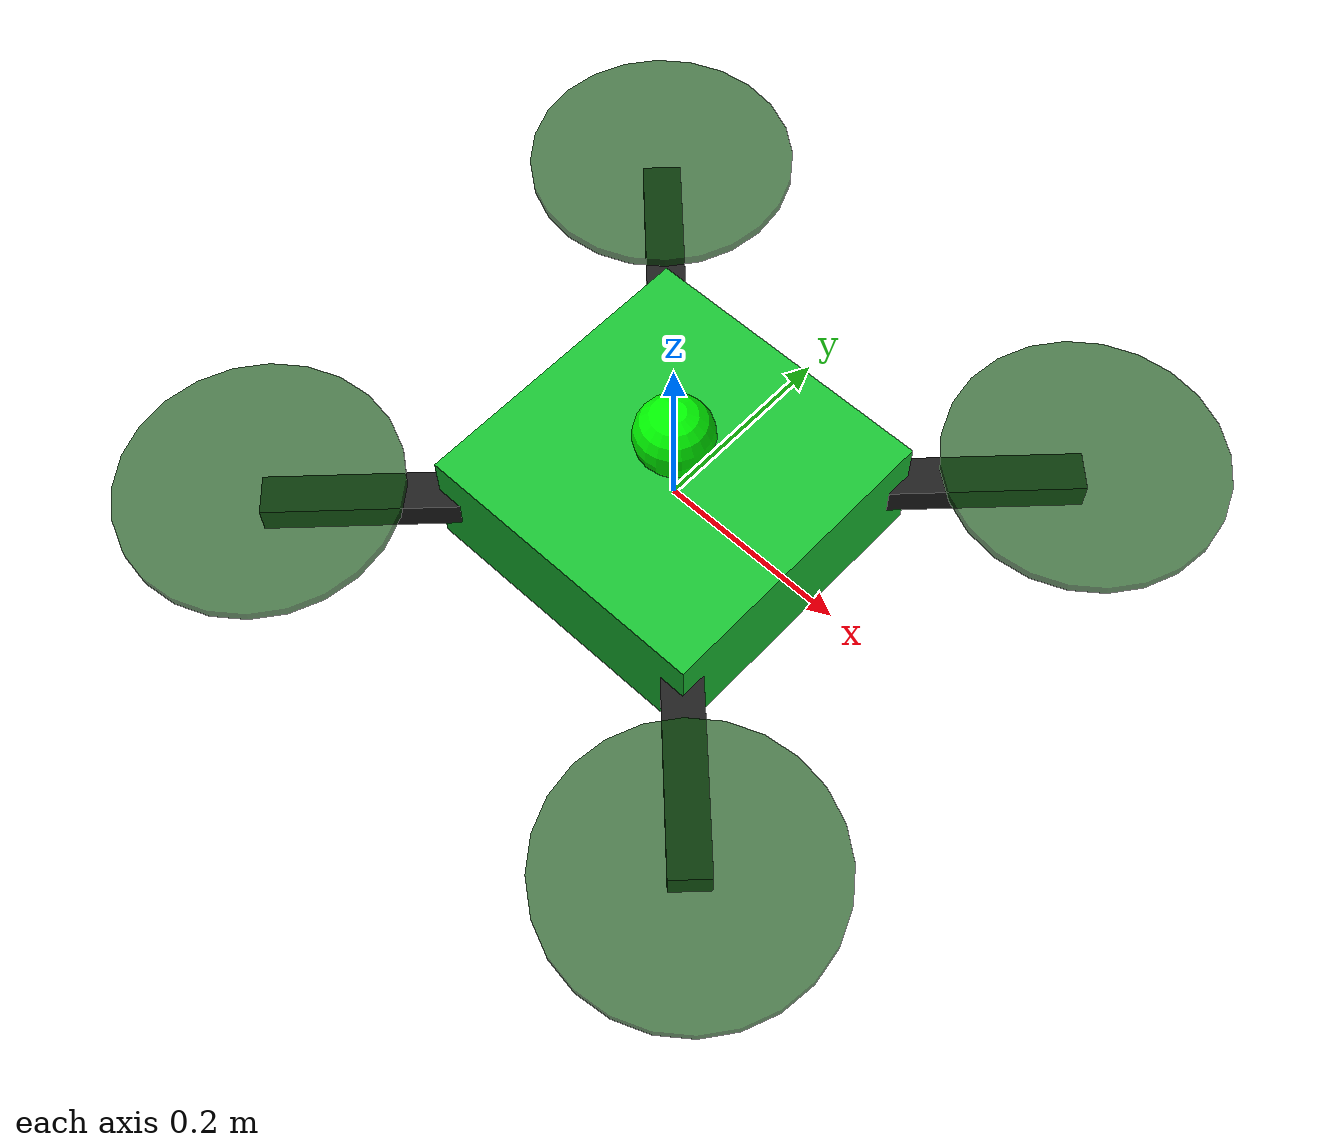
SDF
<?xml version="1.0" encoding="UTF-8"?>
<sdf version="1.9">
  <model name="interceptor_drone">
    <pose>0 0 0 0 0 0</pose>

    <!-- ── Main body ─────────────────────────────────────────────────── -->
    <link name="base_link">
      <!-- Kinematic velocity-controlled body (see plugin below); gravity
           would fight the velocity plugin between command ticks and drag
           the drone to z=0 whenever cmd_vel stops arriving. -->
      <gravity>false</gravity>
      <velocity_decay>
        <linear>0</linear>
        <angular>10</angular>
      </velocity_decay>
      <inertial>
        <mass>2.5</mass>
        <inertia>
          <ixx>0.032</ixx><ixy>0</ixy><ixz>0</ixz>
          <iyy>0.032</iyy><iyz>0</iyz>
          <izz>0.055</izz>
        </inertia>
      </inertial>

      <collision name="body_collision">
        <geometry><box><size>0.7 0.7 0.3</size></box></geometry>
      </collision>

      <!-- Central body (green) -->
      <visual name="body_visual">
        <geometry><box><size>0.32 0.32 0.12</size></box></geometry>
        <material>
          <ambient>0.1 0.75 0.2 1</ambient>
          <diffuse>0.1 0.75 0.2 1</diffuse>
          <specular>0.1 0.3 0.1 1</specular>
        </material>
      </visual>

      <!-- Arms -->
      <visual name="arm_ne">
        <pose>0.14 0.14 0 0 0 0.785</pose>
        <geometry><box><size>0.40 0.04 0.03</size></box></geometry>
        <material><ambient>0.12 0.12 0.12 1</ambient><diffuse>0.12 0.12 0.12 1</diffuse></material>
      </visual>
      <visual name="arm_nw">
        <pose>-0.14 0.14 0 0 0 -0.785</pose>
        <geometry><box><size>0.40 0.04 0.03</size></box></geometry>
        <material><ambient>0.12 0.12 0.12 1</ambient><diffuse>0.12 0.12 0.12 1</diffuse></material>
      </visual>
      <visual name="arm_se">
        <pose>0.14 -0.14 0 0 0 -0.785</pose>
        <geometry><box><size>0.40 0.04 0.03</size></box></geometry>
        <material><ambient>0.12 0.12 0.12 1</ambient><diffuse>0.12 0.12 0.12 1</diffuse></material>
      </visual>
      <visual name="arm_sw">
        <pose>-0.14 -0.14 0 0 0 0.785</pose>
        <geometry><box><size>0.40 0.04 0.03</size></box></geometry>
        <material><ambient>0.12 0.12 0.12 1</ambient><diffuse>0.12 0.12 0.12 1</diffuse></material>
      </visual>

      <!-- Rotors (larger, green-tinted) -->
      <visual name="rotor_0_vis">
        <pose>0.28 0.28 0.03 0 0 0</pose>
        <geometry><cylinder><radius>0.14</radius><length>0.01</length></cylinder></geometry>
        <material><ambient>0.05 0.3 0.05 0.7</ambient><diffuse>0.05 0.3 0.05 0.7</diffuse></material>
      </visual>
      <visual name="rotor_1_vis">
        <pose>-0.28 0.28 0.03 0 0 0</pose>
        <geometry><cylinder><radius>0.14</radius><length>0.01</length></cylinder></geometry>
        <material><ambient>0.05 0.3 0.05 0.7</ambient><diffuse>0.05 0.3 0.05 0.7</diffuse></material>
      </visual>
      <visual name="rotor_2_vis">
        <pose>0.28 -0.28 0.03 0 0 0</pose>
        <geometry><cylinder><radius>0.14</radius><length>0.01</length></cylinder></geometry>
        <material><ambient>0.05 0.3 0.05 0.7</ambient><diffuse>0.05 0.3 0.05 0.7</diffuse></material>
      </visual>
      <visual name="rotor_3_vis">
        <pose>-0.28 -0.28 0.03 0 0 0</pose>
        <geometry><cylinder><radius>0.14</radius><length>0.01</length></cylinder></geometry>
        <material><ambient>0.05 0.3 0.05 0.7</ambient><diffuse>0.05 0.3 0.05 0.7</diffuse></material>
      </visual>

      <!-- Green beacon on top -->
      <visual name="top_light">
        <pose>0 0 0.1 0 0 0</pose>
        <geometry><sphere><radius>0.04</radius></sphere></geometry>
        <material>
          <ambient>0 1 0 1</ambient><diffuse>0 1 0 1</diffuse>
          <emissive>0 0.6 0 1</emissive>
        </material>
      </visual>
    </link>

    <!-- ── Rotor links + joints ───────────────────────────────────────── -->
    <link name="rotor_0">
      <pose>0.28 0.28 0.03 0 0 0</pose>
      <gravity>false</gravity>
      <inertial><mass>0.04</mass><inertia><ixx>9.75e-06</ixx><ixy>0</ixy><ixz>0</ixz><iyy>0.000166704</iyy><iyz>0</iyz><izz>0.000167604</izz></inertia></inertial>
    </link>
    <joint name="rotor_0_joint" type="revolute">
      <parent>base_link</parent><child>rotor_0</child>
      <axis><xyz>0 0 1</xyz><limit><lower>-1e+16</lower><upper>1e+16</upper></limit></axis>
    </joint>

    <link name="rotor_1">
      <pose>-0.28 0.28 0.03 0 0 0</pose>
      <gravity>false</gravity>
      <inertial><mass>0.04</mass><inertia><ixx>9.75e-06</ixx><ixy>0</ixy><ixz>0</ixz><iyy>0.000166704</iyy><iyz>0</iyz><izz>0.000167604</izz></inertia></inertial>
    </link>
    <joint name="rotor_1_joint" type="revolute">
      <parent>base_link</parent><child>rotor_1</child>
      <axis><xyz>0 0 1</xyz><limit><lower>-1e+16</lower><upper>1e+16</upper></limit></axis>
    </joint>

    <link name="rotor_2">
      <pose>0.28 -0.28 0.03 0 0 0</pose>
      <gravity>false</gravity>
      <inertial><mass>0.04</mass><inertia><ixx>9.75e-06</ixx><ixy>0</ixy><ixz>0</ixz><iyy>0.000166704</iyy><iyz>0</iyz><izz>0.000167604</izz></inertia></inertial>
    </link>
    <joint name="rotor_2_joint" type="revolute">
      <parent>base_link</parent><child>rotor_2</child>
      <axis><xyz>0 0 1</xyz><limit><lower>-1e+16</lower><upper>1e+16</upper></limit></axis>
    </joint>

    <link name="rotor_3">
      <pose>-0.28 -0.28 0.03 0 0 0</pose>
      <gravity>false</gravity>
      <inertial><mass>0.04</mass><inertia><ixx>9.75e-06</ixx><ixy>0</ixy><ixz>0</ixz><iyy>0.000166704</iyy><iyz>0</iyz><izz>0.000167604</izz></inertia></inertial>
    </link>
    <joint name="rotor_3_joint" type="revolute">
      <parent>base_link</parent><child>rotor_3</child>
      <axis><xyz>0 0 1</xyz><limit><lower>-1e+16</lower><upper>1e+16</upper></limit></axis>
    </joint>

    <plugin filename="gz-sim-velocity-control-system"
      name="gz::sim::systems::VelocityControl">
    </plugin>

    <!-- Odometry publisher (3D — default is 2D, which zeroes pose.z) -->
    <plugin filename="gz-sim-odometry-publisher-system"
      name="gz::sim::systems::OdometryPublisher">
      <odom_frame>world</odom_frame>
      <robot_base_frame>interceptor_drone</robot_base_frame>
      <odom_publish_frequency>50</odom_publish_frequency>
      <dimensions>3</dimensions>
    </plugin>

  </model>
</sdf>
